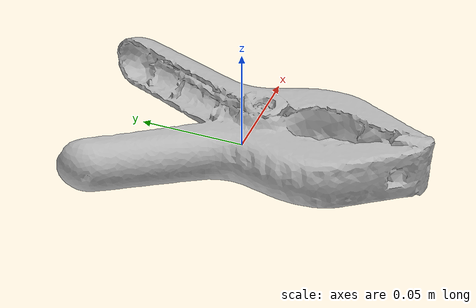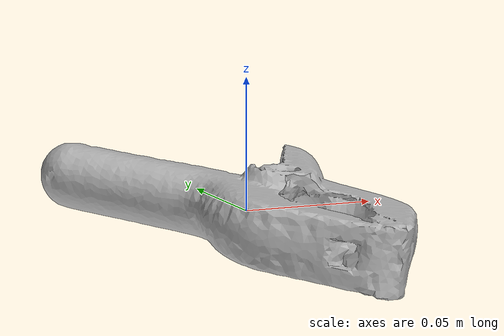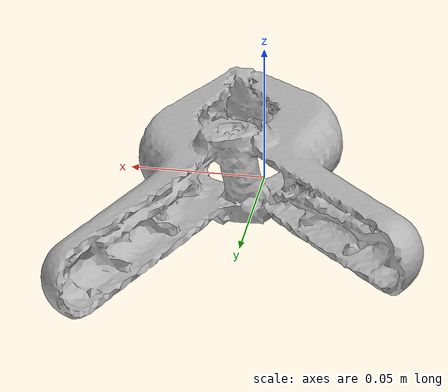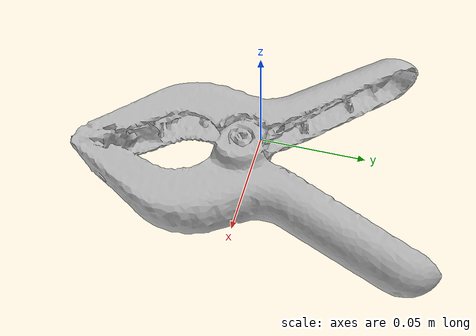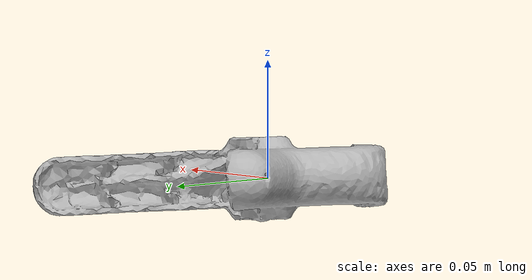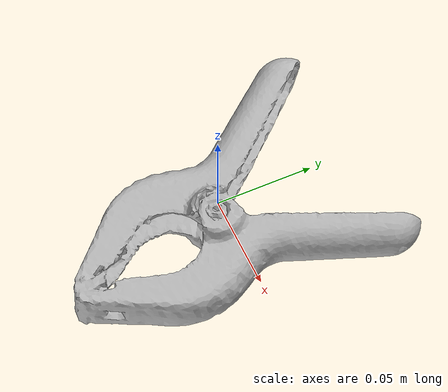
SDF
<?xml version="1.0" ?>
<sdf version="1.7">
<!--
This SDF file was automatically generated using a template modified
and authored by Jinjian Li. The moment of interia is not supposed to be changed.
-->
    <model name="obj_000019">
      <pose>0.0 0.0 0.0 0.0 0.0 0.0</pose>
      <link name="link">
        <inertial>
          <inertia>
           <ixx>0.00021017322804307807</ixx>
           <ixy>1.6438825102290536e-05</ixy>
           <ixz>1.0471378723156533e-05</ixz>
           <iyy>0.0001184138606546334</iyy>
           <iyz>-1.0438664267772428e-05</iyz>
           <izz>0.000308305939491237</izz>
          </inertia>
          <mass>0.1339318799996835</mass>
        </inertial>
        <collision name="collision">
          <geometry>
            <mesh>
             <uri>obj_000019.obj</uri>
             <scale>1 1 1</scale>
            </mesh>
          </geometry>
        </collision>

        <visual name="visual">
          <geometry>
            <mesh>
             <uri>obj_000019.obj</uri>
             <scale>1 1 1</scale>
            </mesh>
          </geometry>
        </visual>
      </link>
    </model>
</sdf>
